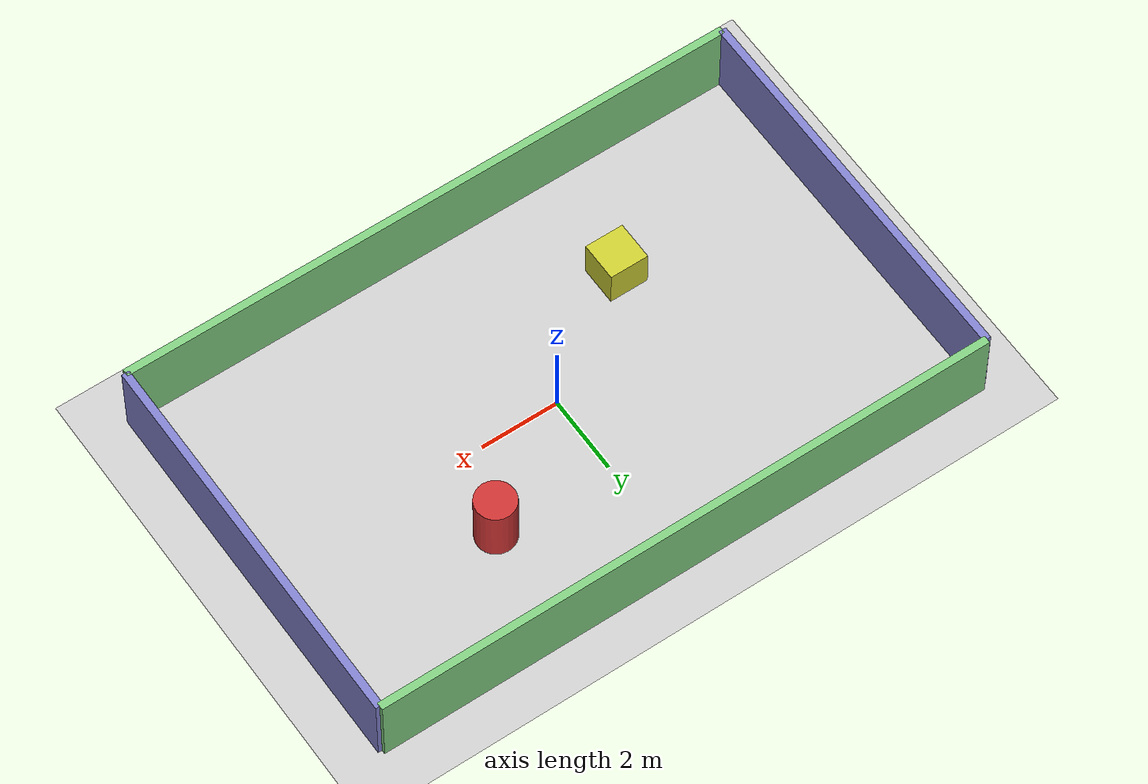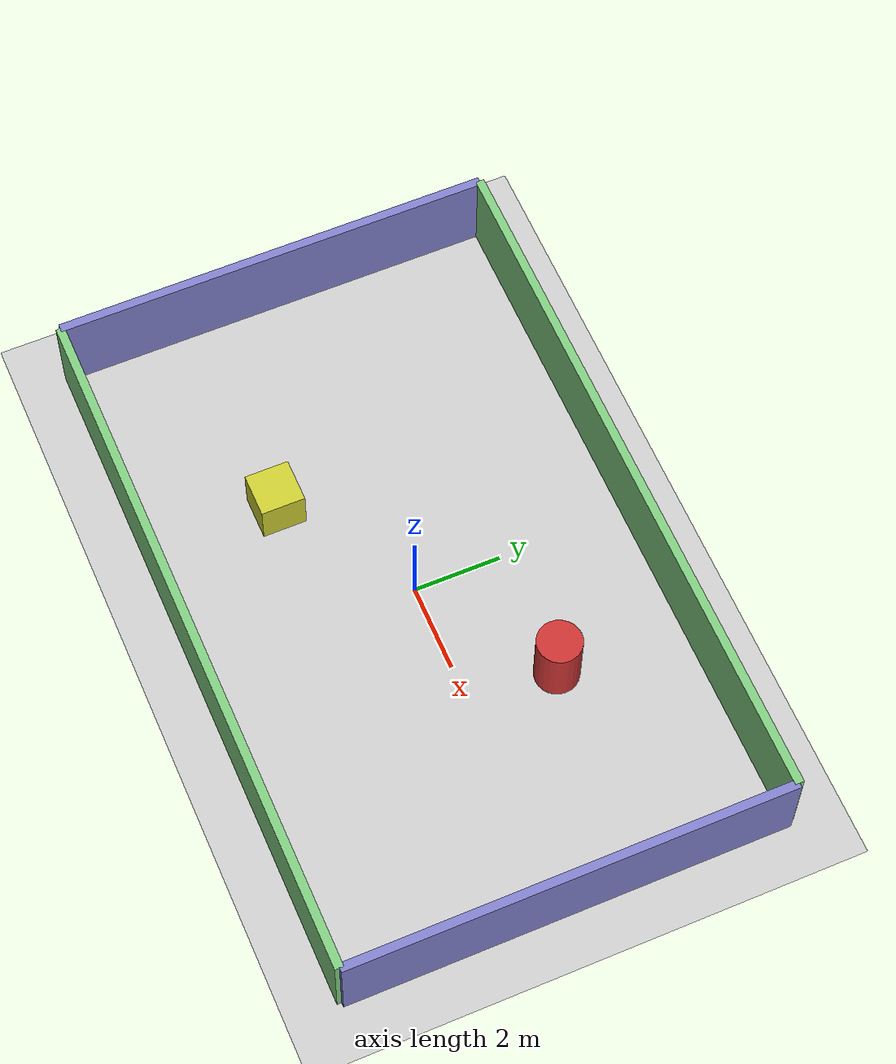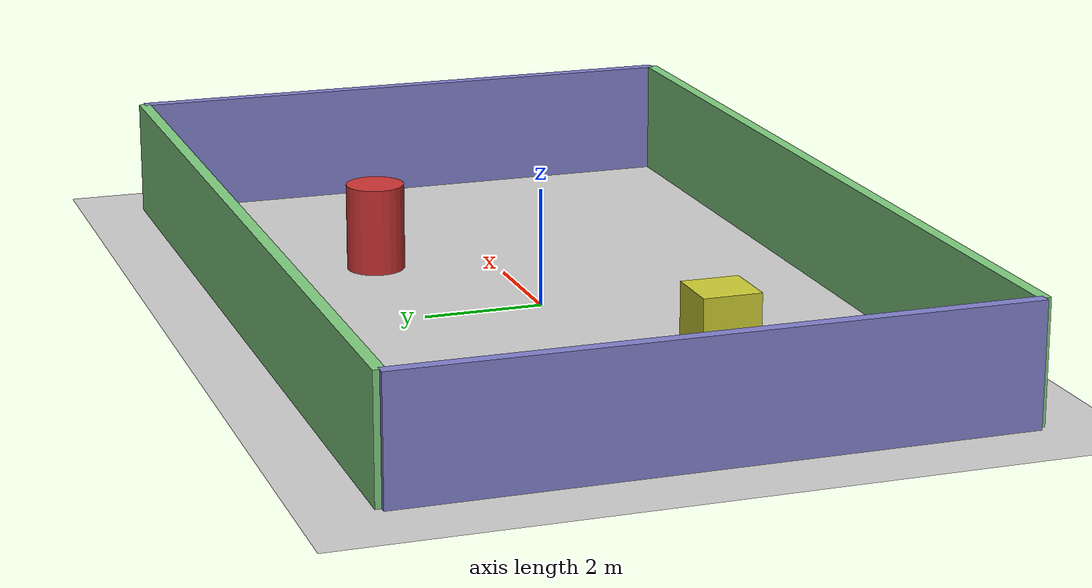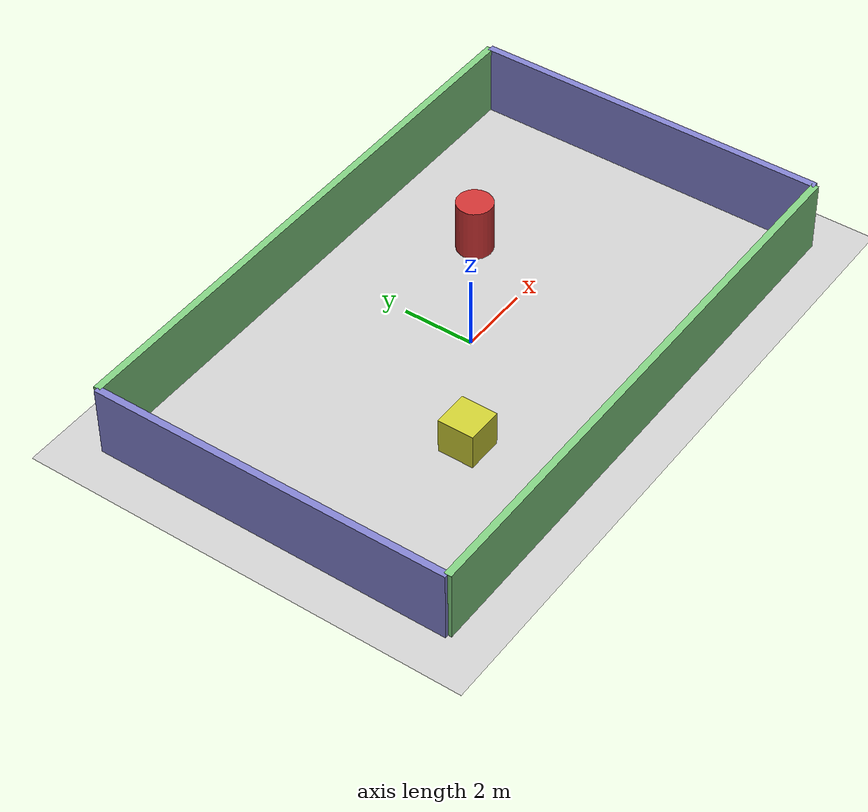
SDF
<?xml version="1.0" ?>
<sdf version="1.8">
  <world name="test_world">

    <!-- 物理引擎设置 -->
    <physics name="1ms" type="ignored">
      <max_step_size>0.001</max_step_size>
      <real_time_factor>1.0</real_time_factor>
    </physics>

    <!-- 必要的系统插件 -->
    <plugin filename="gz-sim-physics-system" name="gz::sim::systems::Physics"/>
    <plugin filename="gz-sim-user-commands-system" name="gz::sim::systems::UserCommands"/>
    <plugin filename="gz-sim-scene-broadcaster-system" name="gz::sim::systems::SceneBroadcaster"/>
    <plugin filename="gz-sim-sensors-system" name="gz::sim::systems::Sensors">
      <render_engine>ogre2</render_engine>
    </plugin>
    <plugin filename="gz-sim-imu-system" name="gz::sim::systems::Imu"/>

    <!-- 光照 -->
    <light type="directional" name="sun_light">
      <cast_shadows>true</cast_shadows>
      <pose>0 0 10 0 0 0</pose>
      <diffuse>0.8 0.8 0.8 1</diffuse>
      <specular>0.2 0.2 0.2 1</specular>
      <direction>-0.5 0.1 -0.9</direction>
    </light>

    <!-- 地面 -->
    <model name="ground">
      <static>true</static>
      <link name="ground_link">
        <collision name="collision">
          <geometry>
            <plane>
              <normal>0 0 1</normal>
              <size>100 100</size>
            </plane>
          </geometry>
        </collision>
        <visual name="visual">
          <geometry>
            <plane>
              <normal>0 0 1</normal>
              <size>100 100</size>
            </plane>
          </geometry>
          <material>
            <ambient>0.8 0.8 0.8 1</ambient>
            <diffuse>0.8 0.8 0.8 1</diffuse>
          </material>
        </visual>
      </link>
    </model>

    <!-- 墙壁 1 - 前方 -->
    <model name="wall_1">
      <static>true</static>
      <pose>8 0 1 0 0 0</pose>
      <link name="link">
        <collision name="collision">
          <geometry><box><size>0.2 10 2</size></box></geometry>
        </collision>
        <visual name="visual">
          <geometry><box><size>0.2 10 2</size></box></geometry>
          <material><ambient>0.5 0.5 0.8 1</ambient></material>
        </visual>
      </link>
    </model>

    <!-- 墙壁 2 - 后方 -->
    <model name="wall_2">
      <static>true</static>
      <pose>-8 0 1 0 0 0</pose>
      <link name="link">
        <collision name="collision">
          <geometry><box><size>0.2 10 2</size></box></geometry>
        </collision>
        <visual name="visual">
          <geometry><box><size>0.2 10 2</size></box></geometry>
          <material><ambient>0.5 0.5 0.8 1</ambient></material>
        </visual>
      </link>
    </model>

    <!-- 墙壁 3 - 左侧 -->
    <model name="wall_3">
      <static>true</static>
      <pose>0 5 1 0 0 0</pose>
      <link name="link">
        <collision name="collision">
          <geometry><box><size>16 0.2 2</size></box></geometry>
        </collision>
        <visual name="visual">
          <geometry><box><size>16 0.2 2</size></box></geometry>
          <material><ambient>0.5 0.8 0.5 1</ambient></material>
        </visual>
      </link>
    </model>

    <!-- 墙壁 4 - 右侧 -->
    <model name="wall_4">
      <static>true</static>
      <pose>0 -5 1 0 0 0</pose>
      <link name="link">
        <collision name="collision">
          <geometry><box><size>16 0.2 2</size></box></geometry>
        </collision>
        <visual name="visual">
          <geometry><box><size>16 0.2 2</size></box></geometry>
          <material><ambient>0.5 0.8 0.5 1</ambient></material>
        </visual>
      </link>
    </model>

    <!-- 障碍物 - 圆柱 -->
    <model name="obstacle_1">
      <static>true</static>
      <pose>3 2 0.75 0 0 0</pose>
      <link name="link">
        <collision name="collision">
          <geometry><cylinder><radius>0.5</radius><length>1.5</length></cylinder></geometry>
        </collision>
        <visual name="visual">
          <geometry><cylinder><radius>0.5</radius><length>1.5</length></cylinder></geometry>
          <material><ambient>0.8 0.2 0.2 1</ambient></material>
        </visual>
      </link>
    </model>

    <!-- 障碍物 - 箱子 -->
    <model name="obstacle_2">
      <static>true</static>
      <pose>-3 -2 0.5 0 0 0</pose>
      <link name="link">
        <collision name="collision">
          <geometry><box><size>1 1 1</size></box></geometry>
        </collision>
        <visual name="visual">
          <geometry><box><size>1 1 1</size></box></geometry>
          <material><ambient>0.8 0.8 0.2 1</ambient></material>
        </visual>
      </link>
    </model>

  </world>
</sdf>
